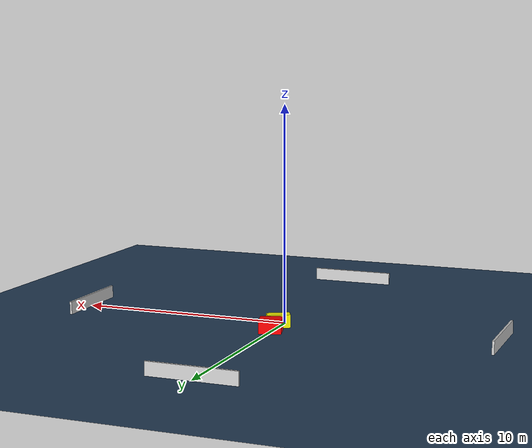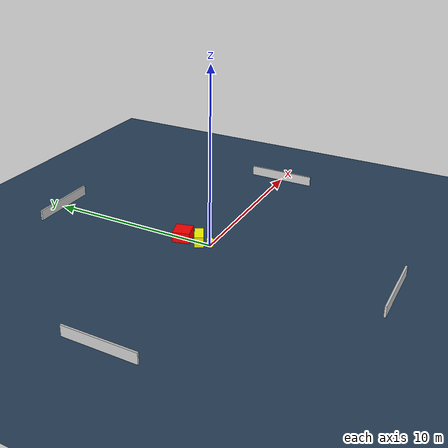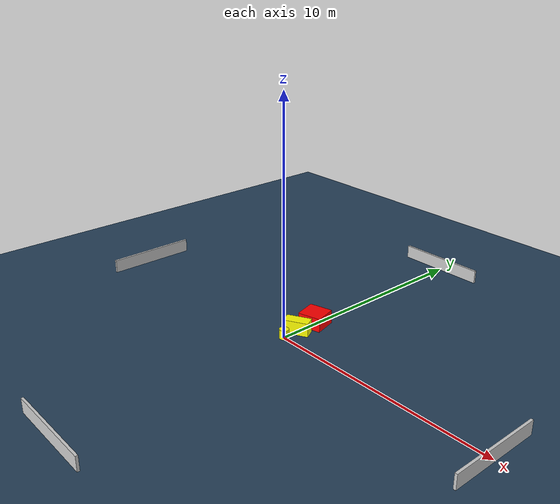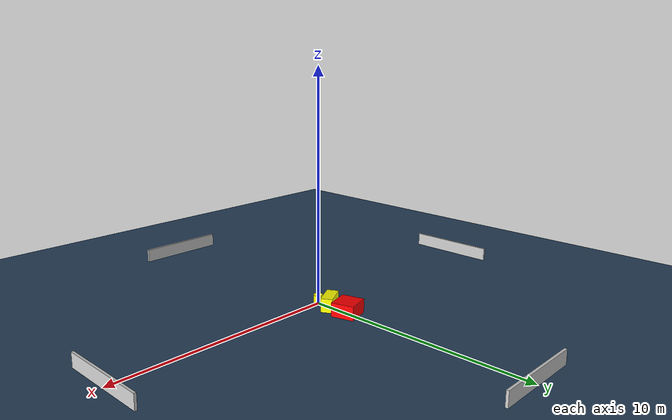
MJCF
<?xml version="1.0" ?>
<mujoco model="generated_environment">
  <option timestep="0.01" integrator="RK4" cone="elliptic"/>
  <default>
    <geom density="1"/>
  </default>
  <asset>
    <texture builtin="gradient" height="3072" name="skybox" rgb1="0.3 0.5 0.7" rgb2="0 0 0" type="skybox" width="512"/>
    <texture builtin="checker" height="300" name="groundplane" rgb1="0.2 0.3 0.4" rgb2="0.1 0.2 0.3" type="2d" width="300"/>
    <material name="groundplane" reflectance="0.2" texrepeat="5 5" texture="groundplane"/>
  </asset>
  <worldbody>
    <light dir="0 0 -1" directional="true" pos="0 0 1.5"/>
    <geom condim="3" friction="0.5 0.005 0.001" material="groundplane" name="floor" pos="0 0 0" size="0 0 0.05" type="plane"/>
    <body name="walls">
      <geom name="wall_1" condim="4" pos="-10.0 0.0 0.3" rgba="0.800000011920929 0.800000011920929 0.800000011920929 1.0" size="0.05 2.0 0.3" type="box"/>
      <geom name="wall_2" condim="4" pos="10.0 0.0 0.3" rgba="0.800000011920929 0.800000011920929 0.800000011920929 1.0" size="0.05 2.0 0.3" type="box"/>
      <geom name="wall_3" condim="4" pos="0.0 -10.0 0.3" rgba="0.800000011920929 0.800000011920929 0.800000011920929 1.0" size="2.0 0.05 0.3" type="box"/>
      <geom name="wall_4" condim="4" pos="0.0 10.0 0.3" rgba="0.800000011920929 0.800000011920929 0.800000011920929 1.0" size="2.0 0.05 0.3" type="box"/>
    </body>
    <body name="robot">
      <joint name="joint_x" type="slide" pos="0 0 0" axis="1 0 0"/>
      <joint name="joint_y" type="slide" pos="0 0 0" axis="0 1 0"/>
      <geom name="robot" type="cylinder" pos="0.0 0.0 0.2" size="0.2 0.2 0.0" mass="5.0" friction="1.0 0.005 0.0001" condim="4" rgba="1.0 1.0 0.0 1.0"/>
    </body>
    <body name="obstacle_1_movable">
      <geom name="obstacle_1_movable" condim="4" pos="0.02894821743309056 0.7017886141470129 0.3" euler="0 0 208.44689890924386" friction="0.0 0.005 0.001" rgba="1.0 1.0 0.0 1.0" size="0.5305447752465233 0.24974895269898104 0.3" type="box" mass="0.1"/>
      <joint type="free"/>
    </body>
    <body name="obstacle_2_static">
      <geom name="obstacle_2_static" condim="4" pos="0.013640780061439572 1.6950101400061035 0.3" euler="0 0 15.361687701534512" friction="0.0 0.005 0.001" rgba="1.0 0.0 0.0 1.0" size="0.5119359217582651 0.4889908855046567 0.3" type="box"/>
    </body>
  </worldbody>
  <actuator>
    <motor name="actuator_x" joint="joint_x" gear="1" ctrlrange="-1 1"/>
    <motor name="actuator_y" joint="joint_y" gear="1" ctrlrange="-1 1"/>
  </actuator>
</mujoco>
